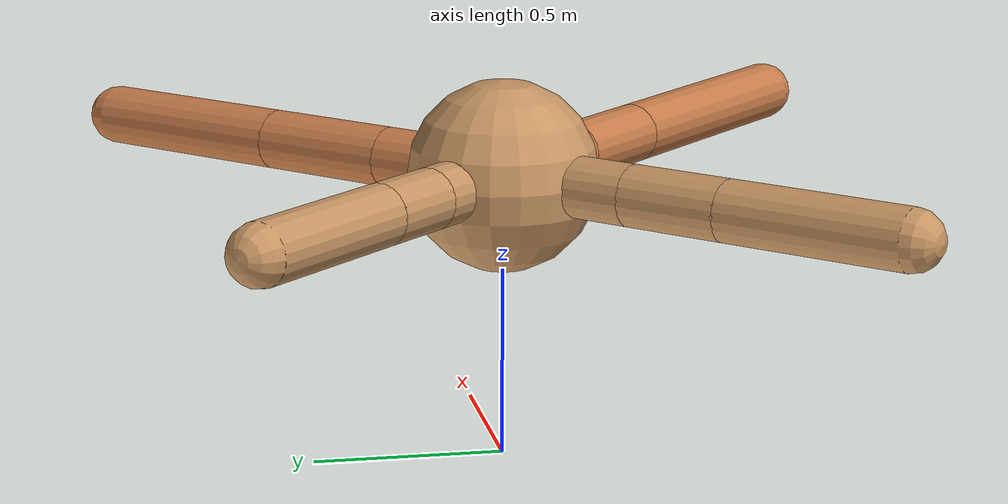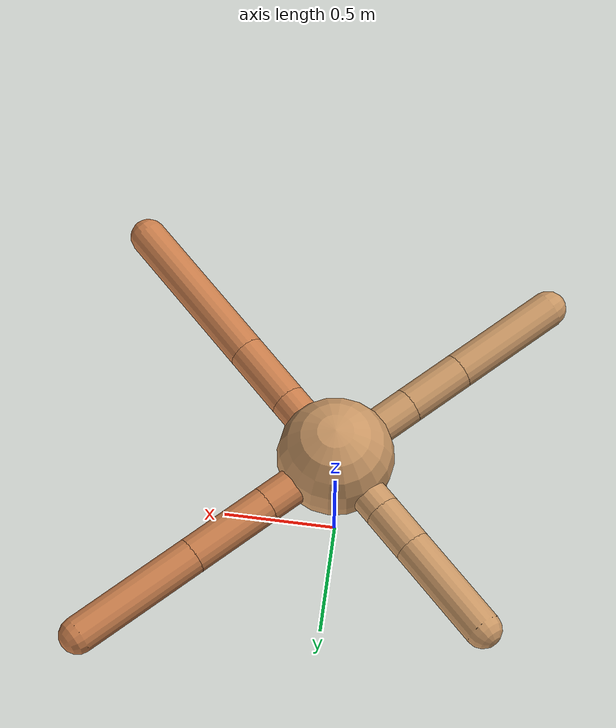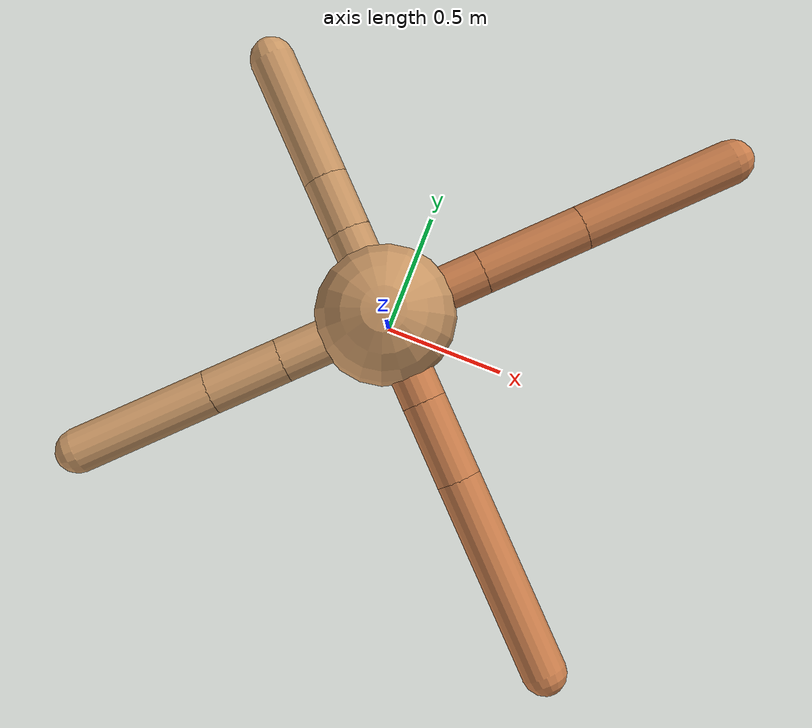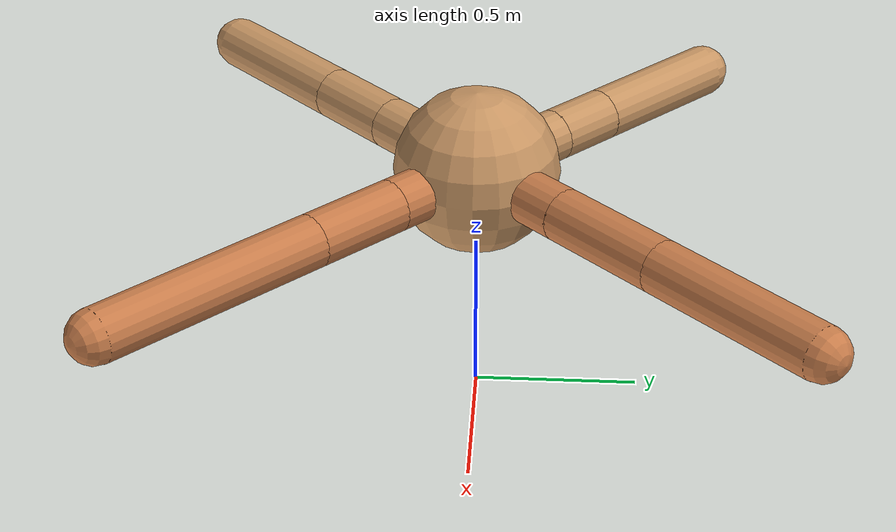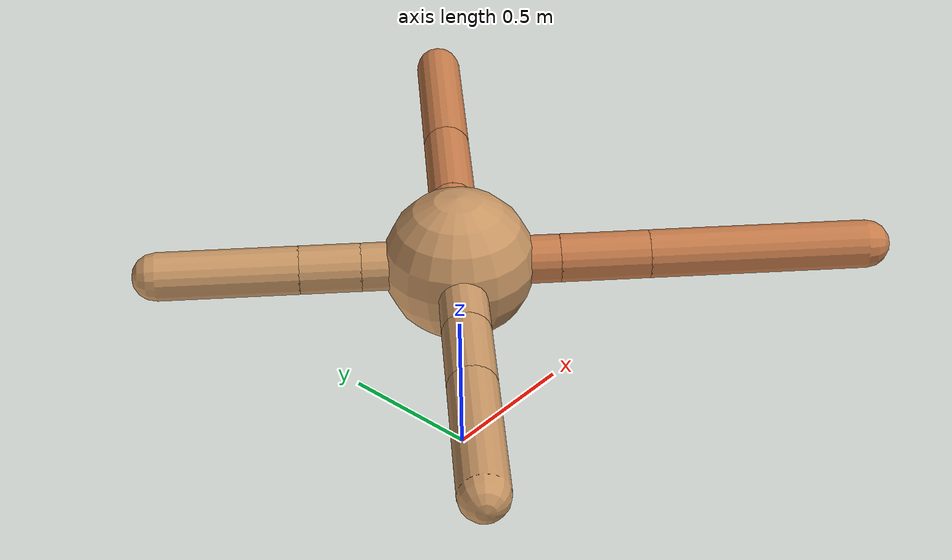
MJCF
<mujoco model="ant">
  <compiler angle="degree" coordinate="local" inertiafromgeom="true" />
  <option integrator="RK4" timestep="0.01" />
  <custom>
    <numeric data="0.0 0.0 0.55 1.0 0.0 0.0 0.0 0.0 1.0 0.0 -1.0 0.0 -1.0 0.0 1.0" name="init_qpos" />
  </custom>
  <default>
    <joint armature="1" damping="1" limited="true" />
    <geom conaffinity="0" condim="3" density="5.0" friction="1.5 0.1 0.1" margin="0.01" rgba="0.8 0.6 0.4 1" />
  </default>
  <worldbody>
    <body name="torso" pos="0 0 0.75">
      <geom name="torso_geom" pos="0 0 0" size="0.25" type="sphere" />

      <body name="front_left_leg" pos="0 0 0">
        <geom fromto="0.0 0.0 0.0 0.260482457160661 0.260482457160661 0.0" name="aux_1_geom" size="0.08" type="capsule" rgba=".8 .5 .3 1" />
        <body name="aux_1" pos="0.260482457160661 0.260482457160661 0.0">
          <joint axis="0 0 1" name="hip_1" pos="0.0 0.0 0.0" range="-40 40" type="hinge" />
          <geom fromto="0.0 0.0 0.0 0.2684251217079107 0.2684251217079107 0.0" name="left_leg_geom" size="0.08" type="capsule" rgba=".8 .5 .3 1" />
          <body pos="0.2684251217079107 0.2684251217079107 0.0" name="front_left_foot">
            <joint axis="-1 1 0" name="ankle_1" pos="0.0 0.0 0.0" range="30 100" type="hinge" />
            <geom fromto="0.0 0.0 0.0 0.40654318391879074 0.40654318391879074 0.0" name="left_ankle_geom" size="0.08" type="capsule" rgba=".8 .5 .3 1" />
          </body>
        </body>
      </body>
      <body name="front_right_leg" pos="0 0 0">
        <geom fromto="0.0 0.0 0.0 -0.22547988414162312 0.22547988414162312 0.0" name="aux_2_geom" size="0.08" type="capsule" />
        <body name="aux_2" pos="-0.22547988414162312 0.22547988414162312 0.0">
          <joint axis="0 0 1" name="hip_2" pos="0.0 0.0 0.0" range="-40 40" type="hinge" />
          <geom fromto="0.0 0.0 0.0 -0.1421931289699573 0.1421931289699573 0.0" name="right_leg_geom" size="0.08" type="capsule" />
          <body pos="-0.1421931289699573 0.1421931289699573 0.0" name="front_right_foot">
            <joint axis="1 1 0" name="ankle_2" pos="0.0 0.0 0.0" range="-100 -30" type="hinge" />
            <geom fromto="0.0 0.0 0.0 -0.32706592176886057 0.32706592176886057 0.0" name="right_ankle_geom" size="0.08" type="capsule" />
          </body>
        </body>
      </body>
      <body name="left_back_leg" pos="0 0 0">
        <geom fromto="0.0 0.0 0.0 -0.27616951966731007 -0.27616951966731007 0.0" name="aux_3_geom" size="0.08" type="capsule" />
        <body name="aux_3" pos="-0.27616951966731007 -0.27616951966731007 0.0">
          <joint axis="0 0 1" name="hip_3" pos="0.0 0.0 0.0" range="-40 40" type="hinge" />
          <geom fromto="0.0 0.0 0.0 -0.1926556092651696 -0.1926556092651696 0.0" name="back_leg_geom" size="0.08" type="capsule" />
          <body pos="-0.1926556092651696 -0.1926556092651696 0.0" name="left_back_foot">
            <joint axis="-1 1 0" name="ankle_3" pos="0.0 0.0 0.0" range="-100 -30" type="hinge" />
            <geom fromto="0.0 0.0 0.0 -0.35364904818370735 -0.35364904818370735 0.0" name="third_ankle_geom" size="0.08" type="capsule" />
          </body>
        </body>
      </body>
      <body name="right_back_leg" pos="0 0 0">
        <geom fromto="0.0 0.0 0.0 0.23364245496567726 -0.23364245496567726 0.0" name="aux_4_geom" size="0.08" type="capsule" rgba=".8 .5 .3 1" />
        <body name="aux_4" pos="0.23364245496567726 -0.23364245496567726 0.0">
          <joint axis="0 0 1" name="hip_4" pos="0.0 0.0 0.0" range="-40 40" type="hinge" />
          <geom fromto="0.0 0.0 0.0 0.20862489911714632 -0.20862489911714632 0.0" name="rightback_leg_geom" size="0.08" type="capsule" rgba=".8 .5 .3 1" />
          <body pos="0.20862489911714632 -0.20862489911714632 0.0" name="right_back_foot">
            <joint axis="1 1 0" name="ankle_4" pos="0.0 0.0 0.0" range="30 100" type="hinge" />
            <geom fromto="0.0 0.0 0.0 0.5123144559917051 -0.5123144559917051 0.0" name="fourth_ankle_geom" size="0.08" type="capsule" rgba=".8 .5 .3 1" />
          </body>
        </body>
      </body>
    </body>
  </worldbody>
  <actuator>
    <motor ctrllimited="true" ctrlrange="-1.0 1.0" joint="hip_4" gear="150" />
    <motor ctrllimited="true" ctrlrange="-1.0 1.0" joint="ankle_4" gear="150" />
    <motor ctrllimited="true" ctrlrange="-1.0 1.0" joint="hip_1" gear="150" />
    <motor ctrllimited="true" ctrlrange="-1.0 1.0" joint="ankle_1" gear="150" />
    <motor ctrllimited="true" ctrlrange="-1.0 1.0" joint="hip_2" gear="150" />
    <motor ctrllimited="true" ctrlrange="-1.0 1.0" joint="ankle_2" gear="150" />
    <motor ctrllimited="true" ctrlrange="-1.0 1.0" joint="hip_3" gear="150" />
    <motor ctrllimited="true" ctrlrange="-1.0 1.0" joint="ankle_3" gear="150" />
  </actuator>
</mujoco>
